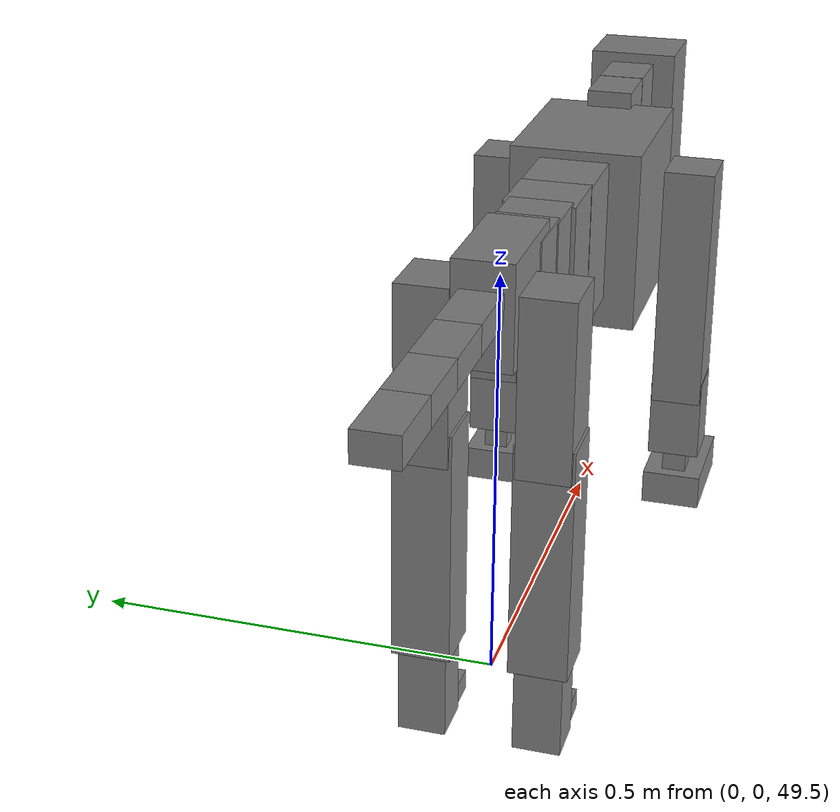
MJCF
<mujoco model="dog">

    <default>
        <joint armature="0.02" stiffness="1" damping="0.2" limited="true"/>
        <geom condim="3" friction="1 0.05 0.05" margin="0.01"/>
        <motor ctrllimited="true" ctrlrange="-1.0 1.0" forcelimited="true" gear="50"/>
    </default>

    <compiler inertiafromgeom="true" angle="radian"/>

    <option timestep="0.016" iterations="50" tolerance="1e-10" solver="Newton" jacobian="dense" cone="pyramidal"/>

    <size nconmax="20000" njmax="60000" nstack="5000000"/>
    <visual>
        <map force="0.1" zfar="30"/>
        <rgba haze="0.15 0.25 0.35 1"/>
        <quality shadowsize="2048"/>
        <global offwidth="800" offheight="800"/>
    </visual>

    <asset>
        <texture type="skybox" builtin="gradient" rgb1="0.3 0.5 0.7" rgb2="0 0 0" width="512" height="512"/>
        <texture name="texplane" type="2d" builtin="checker" rgb1=".2 .3 .4" rgb2=".1 0.15 0.2" width="512" height="512"
                 mark="cross" markrgb=".8 .8 .8"/>
        <texture name="texgeom" type="cube" builtin="flat" mark="cross" width="127" height="1278" rgb1="0.8 0.6 0.4"
                 rgb2="0.8 0.6 0.4" markrgb="1 1 1" random="0.01"/>

        <material name="matplane" reflectance="0.3" texture="texplane" texrepeat="1 1" texuniform="true"/>
        <material name="matgeom" texture="texgeom" texuniform="true" rgba="0.8 0.6 .4 1"/>
    </asset>

    <worldbody>
        <geom name="floor" pos="0 0 0" size="0 0 .25" type="plane" material="matplane" condim="3"/>

        <light directional="false" diffuse=".2 .2 .2" specular="0 0 0" pos="0 0 5" dir="0 0 -1" castshadow="false"/>
        <light mode="targetbodycom" target="torso" directional="false" diffuse=".8 .8 .8" specular="0.3 0.3 0.3"
               pos="0 0 4.0" dir="0 0 -1"/>

        <body name="root" pos="0 0 50">
            <freejoint name="root_1"/>
            <geom type="box" pos="0 0 -0.02" size="0.0774  0.0358  0.063" density="2030"/>

            <body name="spine1" pos="0.054 0 0">
                <joint name="spine1_y" axis="0 1 0" range="0 0.7" limited="true"/>
                <geom type="box" pos="0.02375 0 -0.03" size="0.04375  0.0375  0.05985" density="2030"/>

                <body name="spine2" pos="0.0612 0 0">
                    <joint name="spine2_y" axis="0 1 0" range="-0.15 0.15" limited="true"/>
                    <geom type="box" pos="0.03555  0  -0.04" size="0.04055  0.039  0.06615" density="2030"/>

                    <body name="spine3" pos="0.0730 0 0">
                        <joint name="spine3_y" axis="0 1 0" range="-0.15 0.15" limited="true"/>
                        <geom type="box" pos="0.03555  0  -0.057" size="0.04555  0.0445  0.081" density="2030"/>

                        <body name="spine4" pos="0.0780 0 0">
                            <joint name="spine4_y" axis="0 1 0" range="-0.15 0.15" limited="true"/>
                            <geom type="box" pos="0.05265  0  -0.07" size="0.05265  0.045  0.09135" density="2030"/>

                            <body name="torso" pos="0.1082 0 0">
                                <joint name="torso_y" axis="0 1 0" range="-0.15 0.15" limited="true"/>
                                <geom type="box" pos="0.11925  0  -0.085" size="0.11925  0.085  0.11745"
                                      density="2030"/>

                                <body name="neck1" pos="0.2160  0   0.0180">
                                    <joint name="neck1_y" axis="0 1 0" range="-1.2  -1" limited="true"/>
                                    <geom type="box" pos="0.0423  0  0" size="0.0423  0.03  0.036" density="2325"/>

                                    <body name="neck2" pos="0.0853  0  0">
                                        <joint name="neck2_y" axis="0 1 0" range="0.1  0" limited="true"/>
                                        <geom type="box" pos="0.0423  0  0" size="0.0423  0.03  0.036" density="2325"/>

                                        <body name="head" pos="0.0853  0  0">
                                            <joint name="head_y" axis="0 1 0" range="-0.3  -0.2" limited="true"/>
                                            <geom type="box" pos="0.0531  0  -0.055" size="0.0531  0.06  0.1044"
                                                  density="4030"/>

                                        </body>
                                    </body>
                                </body>

                                <body name="front_shoulder" pos="0.156  0   -0.0480">
                                    <joint name="front_shoulder_y" axis="0 1 0" range="-1 1.5" limited="true"/>
                                    <geom type="box" pos="0 0.13 -0.1383" size="0.0390  0.0333  0.1649" density="1158"/>
                                    <geom type="box" pos="0 -0.13 -0.1383" size="0.0390  0.0333  0.1649"
                                          density="1158"/>

                                    <body name="front_elbow" pos="0  0  -0.2765">
                                        <joint name="front_elbow_y" axis="0 1 0" range="-2 0" limited="true"/>
                                        <geom type="box" pos="0 0.13 -0.0541" size="0.0336  0.0344  0.0541"
                                              density="1081"/>
                                        <geom type="box" pos="0 -0.13 -0.0541" size="0.0336  0.0344  0.0541"
                                              density="1081"/>

                                        <body name="front_wrist" pos="0  0  -0.1083">
                                            <joint name="front_wrist_y" axis="0 1 0" range="-0.2 0" limited="true"/>
                                            <geom type="box" pos="0 0.13 -0.0242" size="0.0145  0.0161  0.0374"
                                                  density="1664"/>
                                            <geom type="box" pos="0 -0.13 -0.0242" size="0.0145  0.0161  0.0374"
                                                  density="1664"/>

                                            <body name="front_finger_end" pos="0  0  -0.0485">
                                                <joint name="front_finger_y" axis="0 1 0" range="-0.4 1"
                                                       limited="true"/>
                                                <geom type="box" pos="0.0395  0.13  -0.0079"
                                                      size="0.0724  0.0395  0.0229" density="1515"/>
                                                <geom type="box" pos="0.0395  -0.13  -0.0079"
                                                      size="0.0724  0.0395  0.0229" density="1515"/>

                                            </body>

                                        </body>
                                    </body>
                                </body>

                            </body>
                        </body>
                    </body>
                </body>
            </body>

            <body name="back_hip" pos="-0.03 0 -0.018">
                <joint name="back_hip_y" axis="0 1 0" range="-1.5 0.3" limited="true"/>
                <geom type="box" pos="0 0.07 -0.0848" size="0.0407  0.0319  0.1076" density="1154"/>
                <geom type="box" pos="0 -0.07 -0.0848" size="0.0407  0.0319  0.1076" density="1154"/>

                <body name="back_knee" pos="0  0  -0.1695">
                    <joint name="back_knee_y" axis="0 1 0" range="0 2.8" limited="true"/>
                    <geom type="box" pos="0 0.07 -0.1298" size="0.0357  0.0352  0.1453" density="1227"/>
                    <geom type="box" pos="0 -0.07 -0.1298" size="0.0357  0.0352  0.1453" density="1227"/>

                    <body name="back_ankle" pos="0  0  -0.2595">
                        <joint name="back_ankle_y" axis="0 1 0" range="-2.2 0" limited="true"/>
                        <geom type="box" pos="0 0.07 -0.0553" size="0.0289  0.0289  0.0665" density="1284"/>
                        <geom type="box" pos="0 -0.07 -0.0553" size="0.0289  0.0289  0.0665" density="1284"/>

                        <body name="back_toe_end" pos="0  0  -0.1105">
                            <joint name="back_toe_y" axis="0 1 0" range="-0.4 1" limited="true"/>
                            <geom type="box" pos="0.0262  0.07  0.0023" size="0.0481  0.0262  0.0127" density="1515"/>
                            <geom type="box" pos="0.0262  -0.07  0.0023" size="0.0481  0.0262  0.0127" density="1515"/>

                        </body>
                    </body>
                </body>
            </body>

            <body name="tail1" pos="-0.074 0 -0.006">
                <joint name="tail1_y" axis="0 1 0" range="-0.2 0.2" limited="true"/>
                <geom type="box" pos="-0.0536  0  0" size="0.045  0.025  0.0175" density="1587"/>

                <body name="tail2" pos="-0.09 0 0">
                    <joint name="tail2_y" axis="0 1 0" range="-0.2 0.2" limited="true"/>
                    <geom type="box" pos="-0.0536  0  0" size="0.045  0.025  0.0175" density="1587"/>

                    <body name="tail3" pos="-0.09 0 0">
                        <joint name="tail3_y" axis="0 1 0" range="-0.2 0.2" limited="true"/>
                        <geom type="box" pos="-0.0536  0  0" size="0.045  0.025  0.0175" density="1587"/>

                        <body name="tail4" pos="-0.09 0 0">
                            <joint name="tail4_y" axis="0 1 0" range="-0.2 0.2" limited="true"/>
                            <geom type="box" pos="-0.0536  0  0" size="0.045  0.025  0.0175" density="1587"/>

                        </body>
                    </body>
                </body>
            </body>
        </body>
    </worldbody>

    <actuator>
        <motor joint="spine1_y" forcerange="-150 150     "/>
        <motor joint="spine2_y" forcerange="-150 150     "/>
        <motor joint="spine3_y" forcerange="-150 150     "/>
        <motor joint="spine4_y" forcerange="-150 150     "/>
        <motor joint="torso_y" forcerange="-150 150     "/>
        <motor joint="neck1_y" forcerange="-100 100       "/>
        <motor joint="neck2_y" forcerange="-100 100       "/>
        <motor joint="head_y" forcerange="-150 150       "/>
        <motor joint="front_shoulder_y" forcerange="-168.02 154.22"/>
        <motor joint="front_elbow_y" forcerange="-151.16 198.85"/>
        <motor joint="front_wrist_y" forcerange="-64.41 64.58"/>
        <motor joint="front_finger_y" forcerange="-93.21 77.45"/>
        <motor joint="back_hip_y" forcerange="-329.44 296.49"/>
        <motor joint="back_knee_y" forcerange="-313.30 399.13"/>
        <motor joint="back_angle_y" forcerange="-211.96 150.34"/>
        <motor joint="back_toe_y" forcerange="-86.80 43.07"/>
        <motor joint="tail1_y" forcerange="-50 50     "/>
        <motor joint="tail2_y" forcerange="-50 50     "/>
        <motor joint="tail3_y" forcerange="-50 50     "/>
        <motor joint="tail4_y" forcerange="-50 50     "/>
    </actuator>
</mujoco>
